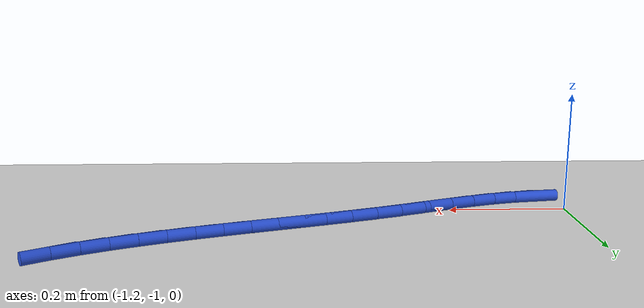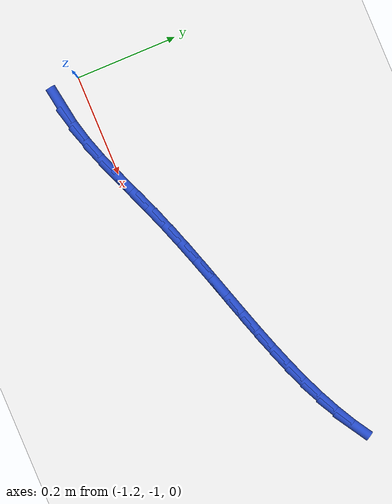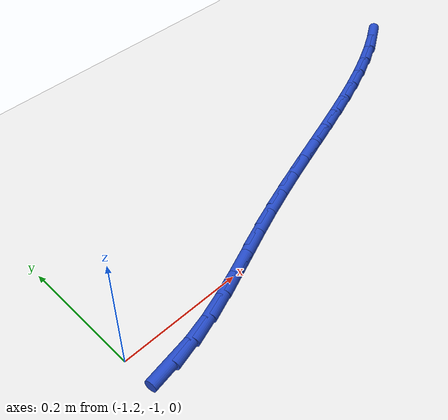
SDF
<sdf version="1.6">
 <world name="default">
  <model name="ground_plane">
   <static>1</static>
   <link name="link">
    <collision name="collision">
     <geometry><plane><normal>0 0 1</normal><size>100 100</size></plane></geometry>
     <surface><friction><ode><mu>100</mu><mu2>50</mu2></ode></friction></surface>
    </collision>
    <visual name="visual">
     <cast_shadows>0</cast_shadows>
     <geometry><plane><normal>0 0 1</normal><size>100 100</size></plane></geometry>
     <material>
      <script><uri>file://media/materials/scripts/gazebo.material</uri><name>Gazebo/WhiteGlow</name></script>
     </material>
    </visual>
   </link>
  </model>
  <model name="line">
   <link name="link_120">
    <pose>-1.163155384837362 -1.0499191890427528 0.01 0 1.57 0.15730229938888932</pose>
    <collision name="collision">
     <geometry><cylinder><radius>0.01</radius><length>0.08</length></cylinder></geometry>
    </collision>
    <visual name="visual">
     <material>
      <script><name>Gazebo/Blue</name><uri>file://media/materials/scripts/gazebo.material</uri></script>
     </material>
     <geometry><cylinder><radius>0.01</radius><length>0.08</length></cylinder></geometry>
    </visual>
   </link>
   <link name="link_121">
    <pose>-1.1222911056833058 -1.0434375953589572 0.01 0 1.57 0.249333715606427</pose>
    <collision name="collision">
     <geometry><cylinder><radius>0.01</radius><length>0.08</length></cylinder></geometry>
    </collision>
    <visual name="visual">
     <material>
      <script><name>Gazebo/Blue</name><uri>file://media/materials/scripts/gazebo.material</uri></script>
     </material>
     <geometry><cylinder><radius>0.01</radius><length>0.08</length></cylinder></geometry>
    </visual>
   </link>
   <link name="link_122">
    <pose>-1.0812102582706158 -1.03297708403735 0.01 0 1.57 0.31554515671380085</pose>
    <collision name="collision">
     <geometry><cylinder><radius>0.01</radius><length>0.08</length></cylinder></geometry>
    </collision>
    <visual name="visual">
     <material>
      <script><name>Gazebo/Blue</name><uri>file://media/materials/scripts/gazebo.material</uri></script>
     </material>
     <geometry><cylinder><radius>0.01</radius><length>0.08</length></cylinder></geometry>
    </visual>
   </link>
   <link name="link_123">
    <pose>-1.039902175600222 -1.0194919534087798 0.01 0 1.57 0.35825794105128106</pose>
    <collision name="collision">
     <geometry><cylinder><radius>0.01</radius><length>0.08</length></cylinder></geometry>
    </collision>
    <visual name="visual">
     <material>
      <script><name>Gazebo/Blue</name><uri>file://media/materials/scripts/gazebo.material</uri></script>
     </material>
     <geometry><cylinder><radius>0.01</radius><length>0.08</length></cylinder></geometry>
    </visual>
   </link>
   <link name="link_124">
    <pose>-0.9983561906730555 -1.0039365018040964 0.01 0 1.57 0.3795500336849259</pose>
    <collision name="collision">
     <geometry><cylinder><radius>0.01</radius><length>0.08</length></cylinder></geometry>
    </collision>
    <visual name="visual">
     <material>
      <script><name>Gazebo/Blue</name><uri>file://media/materials/scripts/gazebo.material</uri></script>
     </material>
     <geometry><cylinder><radius>0.01</radius><length>0.08</length></cylinder></geometry>
    </visual>
   </link>
   <link name="link_125">
    <pose>-0.956561636490047 -0.9872650275541482 0.01 0 1.57 0.3807458337758766</pose>
    <collision name="collision">
     <geometry><cylinder><radius>0.01</radius><length>0.08</length></cylinder></geometry>
    </collision>
    <visual name="visual">
     <material>
      <script><name>Gazebo/Blue</name><uri>file://media/materials/scripts/gazebo.material</uri></script>
     </material>
     <geometry><cylinder><radius>0.01</radius><length>0.08</length></cylinder></geometry>
    </visual>
   </link>
   <link name="link_126">
    <pose>-0.9145078460521278 -0.9704318289897852 0.01 0 1.57 0.36308609455822216</pose>
    <collision name="collision">
     <geometry><cylinder><radius>0.01</radius><length>0.08</length></cylinder></geometry>
    </collision>
    <visual name="visual">
     <material>
      <script><name>Gazebo/Blue</name><uri>file://media/materials/scripts/gazebo.material</uri></script>
     </material>
     <geometry><cylinder><radius>0.01</radius><length>0.08</length></cylinder></geometry>
    </visual>
   </link>
   <link name="link_127">
    <pose>-0.8721885220124342 -0.9543534359329364 0.01 0 1.57 0.33992639403891295</pose>
    <collision name="collision">
     <geometry><cylinder><radius>0.01</radius><length>0.08</length></cylinder></geometry>
    </collision>
    <visual name="visual">
     <material>
      <script><name>Gazebo/Blue</name><uri>file://media/materials/scripts/gazebo.material</uri></script>
     </material>
     <geometry><cylinder><radius>0.01</radius><length>0.08</length></cylinder></geometry>
    </visual>
   </link>
   <link name="link_128">
    <pose>-0.82967022194979 -0.939316666324111 0.01 0 1.57 0.32241696841956624</pose>
    <collision name="collision">
     <geometry><cylinder><radius>0.01</radius><length>0.08</length></cylinder></geometry>
    </collision>
    <visual name="visual">
     <material>
      <script><name>Gazebo/Blue</name><uri>file://media/materials/scripts/gazebo.material</uri></script>
     </material>
     <geometry><cylinder><radius>0.01</radius><length>0.08</length></cylinder></geometry>
    </visual>
   </link>
   <link name="link_129">
    <pose>-0.7870796727170457 -0.9250882729689888 0.01 0 1.57 0.3109369630339611</pose>
    <collision name="collision">
     <geometry><cylinder><radius>0.01</radius><length>0.08</length></cylinder></geometry>
    </collision>
    <visual name="visual">
     <material>
      <script><name>Gazebo/Blue</name><uri>file://media/materials/scripts/gazebo.material</uri></script>
     </material>
     <geometry><cylinder><radius>0.01</radius><length>0.08</length></cylinder></geometry>
    </visual>
   </link>
   <link name="link_130">
    <pose>-0.7445454045451309 -0.911419421414162 0.01 0 1.57 0.3055488475581252</pose>
    <collision name="collision">
     <geometry><cylinder><radius>0.01</radius><length>0.08</length></cylinder></geometry>
    </collision>
    <visual name="visual">
     <material>
      <script><name>Gazebo/Blue</name><uri>file://media/materials/scripts/gazebo.material</uri></script>
     </material>
     <geometry><cylinder><radius>0.01</radius><length>0.08</length></cylinder></geometry>
    </visual>
   </link>
   <link name="link_131">
    <pose>-0.7021959476649734 -0.8980612772062219 0.01 0 1.57 0.30634839876658637</pose>
    <collision name="collision">
     <geometry><cylinder><radius>0.01</radius><length>0.08</length></cylinder></geometry>
    </collision>
    <visual name="visual">
     <material>
      <script><name>Gazebo/Blue</name><uri>file://media/materials/scripts/gazebo.material</uri></script>
     </material>
     <geometry><cylinder><radius>0.01</radius><length>0.08</length></cylinder></geometry>
    </visual>
   </link>
   <link name="link_132">
    <pose>-0.6601598323075044 -0.884765005891761 0.01 0 1.57 0.31347289293342984</pose>
    <collision name="collision">
     <geometry><cylinder><radius>0.01</radius><length>0.08</length></cylinder></geometry>
    </collision>
    <visual name="visual">
     <material>
      <script><name>Gazebo/Blue</name><uri>file://media/materials/scripts/gazebo.material</uri></script>
     </material>
     <geometry><cylinder><radius>0.01</radius><length>0.08</length></cylinder></geometry>
    </visual>
   </link>
   <link name="link_133">
    <pose>-0.6185655887036522 -0.8712817730173708 0.01 0 1.57 0.3271030259472747</pose>
    <collision name="collision">
     <geometry><cylinder><radius>0.01</radius><length>0.08</length></cylinder></geometry>
    </collision>
    <visual name="visual">
     <material>
      <script><name>Gazebo/Blue</name><uri>file://media/materials/scripts/gazebo.material</uri></script>
     </material>
     <geometry><cylinder><radius>0.01</radius><length>0.08</length></cylinder></geometry>
    </visual>
   </link>
   <link name="link_134">
    <pose>-0.5775417470843461 -0.8573627441296433 0.01 0 1.57 0.3474574592460156</pose>
    <collision name="collision">
     <geometry><cylinder><radius>0.01</radius><length>0.08</length></cylinder></geometry>
    </collision>
    <visual name="visual">
     <material>
      <script><name>Gazebo/Blue</name><uri>file://media/materials/scripts/gazebo.material</uri></script>
     </material>
     <geometry><cylinder><radius>0.01</radius><length>0.08</length></cylinder></geometry>
    </visual>
   </link>
   <link name="link_135">
    <pose>-0.5372168376805152 -0.8427590847751704 0.01 0 1.57 0.3747781231553311</pose>
    <collision name="collision">
     <geometry><cylinder><radius>0.01</radius><length>0.08</length></cylinder></geometry>
    </collision>
    <visual name="visual">
     <material>
      <script><name>Gazebo/Blue</name><uri>file://media/materials/scripts/gazebo.material</uri></script>
     </material>
     <geometry><cylinder><radius>0.01</radius><length>0.08</length></cylinder></geometry>
    </visual>
   </link>
   <link name="link_136">
    <pose>-0.4977193907230877 -0.8272219605005431 0.01 0 1.57 0.4093037268148228</pose>
    <collision name="collision">
     <geometry><cylinder><radius>0.01</radius><length>0.08</length></cylinder></geometry>
    </collision>
    <visual name="visual">
     <material>
      <script><name>Gazebo/Blue</name><uri>file://media/materials/scripts/gazebo.material</uri></script>
     </material>
     <geometry><cylinder><radius>0.01</radius><length>0.08</length></cylinder></geometry>
    </visual>
   </link>
   <link name="link_137">
    <pose>-0.4591779364429946 -0.8105025368523546 0.01 0 1.57 0.4512287168173846</pose>
    <collision name="collision">
     <geometry><cylinder><radius>0.01</radius><length>0.08</length></cylinder></geometry>
    </collision>
    <visual name="visual">
     <material>
      <script><name>Gazebo/Blue</name><uri>file://media/materials/scripts/gazebo.material</uri></script>
     </material>
     <geometry><cylinder><radius>0.01</radius><length>0.08</length></cylinder></geometry>
    </visual>
   </link>
   <link name="link_138">
    <pose>-0.42172100507116417 -0.7923519793771959 0.01 0 1.57 0.5006458484857388</pose>
    <collision name="collision">
     <geometry><cylinder><radius>0.01</radius><length>0.08</length></cylinder></geometry>
    </collision>
    <visual name="visual">
     <material>
      <script><name>Gazebo/Blue</name><uri>file://media/materials/scripts/gazebo.material</uri></script>
     </material>
     <geometry><cylinder><radius>0.01</radius><length>0.08</length></cylinder></geometry>
    </visual>
   </link>
   <link name="link_139">
    <pose>-0.3854771268385256 -0.772521453621659 0.01 0 1.57 0.5574734665698978</pose>
    <collision name="collision">
     <geometry><cylinder><radius>0.01</radius><length>0.08</length></cylinder></geometry>
    </collision>
    <visual name="visual">
     <material>
      <script><name>Gazebo/Blue</name><uri>file://media/materials/scripts/gazebo.material</uri></script>
     </material>
     <geometry><cylinder><radius>0.01</radius><length>0.08</length></cylinder></geometry>
    </visual>
   </link>
  </model>
 </world>
</sdf>
